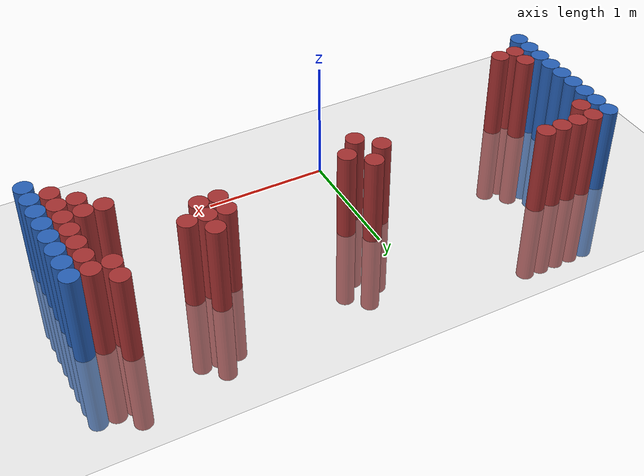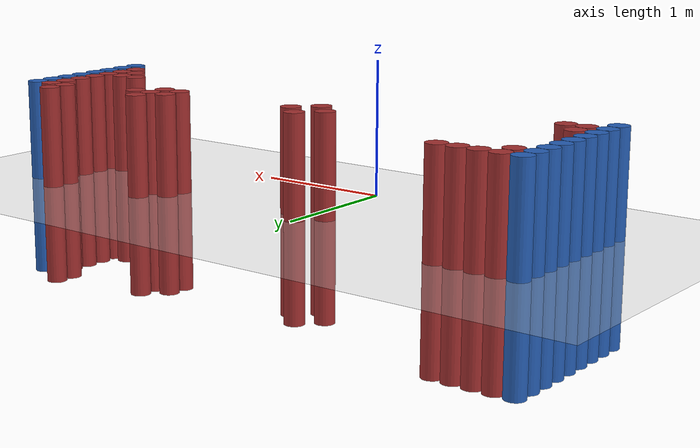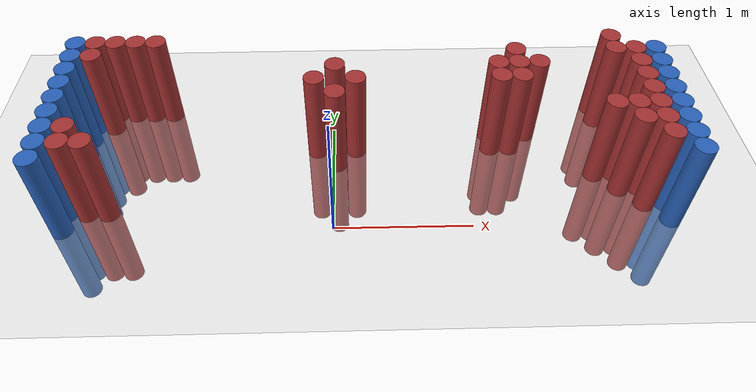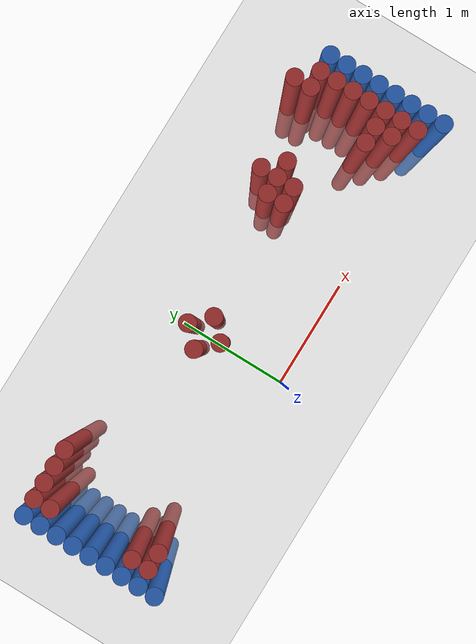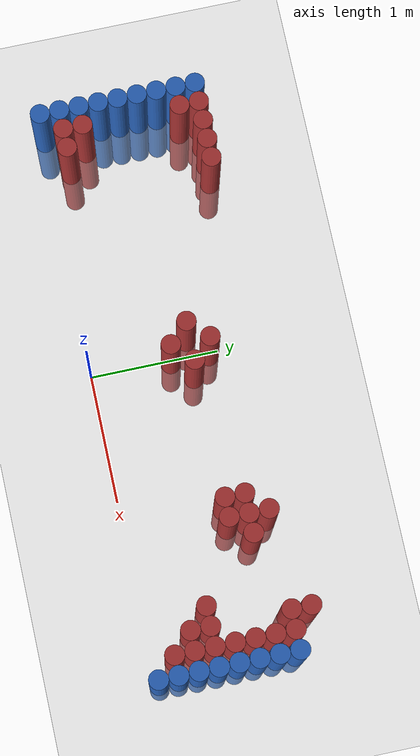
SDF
<sdf version="1.6">
 <world name="default">
  <model name="ground_plane">
   <static>1</static>
   <link name="link">
    <collision name="collision">
     <geometry><plane><normal>0 0 1</normal><size>100 100</size></plane></geometry>
     <surface><friction><ode><mu>100</mu><mu2>50</mu2></ode></friction></surface>
    </collision>
    <visual name="visual">
     <cast_shadows>0</cast_shadows>
     <geometry><plane><normal>0 0 1</normal><size>100 100</size></plane></geometry>
     <material>
      <script><uri>file://media/materials/scripts/gazebo.material</uri><name>Gazebo/Grey</name></script>
     </material>
    </visual>
   </link>
  </model>
  <model name="unit_cylinder_94">
   <static>1</static>
   <pose>2.425000 0.025000 0.000000 0.000000 0.000000 0.000000</pose>
   <link name="link">
    <inertial>
     <mass>1</mass>
     <inertia><ixx>0.145833</ixx><ixy>0</ixy><ixz>0</ixz><iyy>0.145833</iyy><iyz>0</iyz><izz>0.125</izz></inertia>
    </inertial>
    <collision name="collision">
     <geometry><cylinder><radius>0.075000</radius><length>1.5</length></cylinder></geometry>
    </collision>
    <visual name="visual">
     <geometry><cylinder><radius>0.075000</radius><length>1.5</length></cylinder></geometry>
     <material>
      <ambient>0.152000 0.379000 0.720000 1</ambient>
      <diffuse>0.152000 0.379000 0.720000 1</diffuse>
     </material>
     <material>
      <script><name>Gazebo/Grey</name><uri>file://media/materials/scripts/gazebo.material</uri></script>
     </material>
    </visual>
   </link>
  </model>
  <model name="unit_cylinder_95">
   <static>1</static>
   <pose>-1.925000 0.025000 0.000000 0.000000 0.000000 0.000000</pose>
   <link name="link">
    <inertial>
     <mass>1</mass>
     <inertia><ixx>0.145833</ixx><ixy>0</ixy><ixz>0</ixz><iyy>0.145833</iyy><iyz>0</iyz><izz>0.125</izz></inertia>
    </inertial>
    <collision name="collision">
     <geometry><cylinder><radius>0.075000</radius><length>1.5</length></cylinder></geometry>
    </collision>
    <visual name="visual">
     <geometry><cylinder><radius>0.075000</radius><length>1.5</length></cylinder></geometry>
     <material>
      <ambient>0.152000 0.379000 0.720000 1</ambient>
      <diffuse>0.152000 0.379000 0.720000 1</diffuse>
     </material>
     <material>
      <script><name>Gazebo/Grey</name><uri>file://media/materials/scripts/gazebo.material</uri></script>
     </material>
    </visual>
   </link>
  </model>
  <model name="unit_cylinder_96">
   <static>1</static>
   <pose>-1.925000 0.175000 0.000000 0.000000 0.000000 0.000000</pose>
   <link name="link">
    <inertial>
     <mass>1</mass>
     <inertia><ixx>0.145833</ixx><ixy>0</ixy><ixz>0</ixz><iyy>0.145833</iyy><iyz>0</iyz><izz>0.125</izz></inertia>
    </inertial>
    <collision name="collision">
     <geometry><cylinder><radius>0.075000</radius><length>1.5</length></cylinder></geometry>
    </collision>
    <visual name="visual">
     <geometry><cylinder><radius>0.075000</radius><length>1.5</length></cylinder></geometry>
     <material>
      <ambient>0.152000 0.379000 0.720000 1</ambient>
      <diffuse>0.152000 0.379000 0.720000 1</diffuse>
     </material>
     <material>
      <script><name>Gazebo/Grey</name><uri>file://media/materials/scripts/gazebo.material</uri></script>
     </material>
    </visual>
   </link>
  </model>
  <model name="unit_cylinder_97">
   <static>1</static>
   <pose>-1.925000 0.325000 0.000000 0.000000 0.000000 0.000000</pose>
   <link name="link">
    <inertial>
     <mass>1</mass>
     <inertia><ixx>0.145833</ixx><ixy>0</ixy><ixz>0</ixz><iyy>0.145833</iyy><iyz>0</iyz><izz>0.125</izz></inertia>
    </inertial>
    <collision name="collision">
     <geometry><cylinder><radius>0.075000</radius><length>1.5</length></cylinder></geometry>
    </collision>
    <visual name="visual">
     <geometry><cylinder><radius>0.075000</radius><length>1.5</length></cylinder></geometry>
     <material>
      <ambient>0.152000 0.379000 0.720000 1</ambient>
      <diffuse>0.152000 0.379000 0.720000 1</diffuse>
     </material>
     <material>
      <script><name>Gazebo/Grey</name><uri>file://media/materials/scripts/gazebo.material</uri></script>
     </material>
    </visual>
   </link>
  </model>
  <model name="unit_cylinder_98">
   <static>1</static>
   <pose>-1.925000 0.475000 0.000000 0.000000 0.000000 0.000000</pose>
   <link name="link">
    <inertial>
     <mass>1</mass>
     <inertia><ixx>0.145833</ixx><ixy>0</ixy><ixz>0</ixz><iyy>0.145833</iyy><iyz>0</iyz><izz>0.125</izz></inertia>
    </inertial>
    <collision name="collision">
     <geometry><cylinder><radius>0.075000</radius><length>1.5</length></cylinder></geometry>
    </collision>
    <visual name="visual">
     <geometry><cylinder><radius>0.075000</radius><length>1.5</length></cylinder></geometry>
     <material>
      <ambient>0.152000 0.379000 0.720000 1</ambient>
      <diffuse>0.152000 0.379000 0.720000 1</diffuse>
     </material>
     <material>
      <script><name>Gazebo/Grey</name><uri>file://media/materials/scripts/gazebo.material</uri></script>
     </material>
    </visual>
   </link>
  </model>
  <model name="unit_cylinder_99">
   <static>1</static>
   <pose>-1.925000 0.625000 0.000000 0.000000 0.000000 0.000000</pose>
   <link name="link">
    <inertial>
     <mass>1</mass>
     <inertia><ixx>0.145833</ixx><ixy>0</ixy><ixz>0</ixz><iyy>0.145833</iyy><iyz>0</iyz><izz>0.125</izz></inertia>
    </inertial>
    <collision name="collision">
     <geometry><cylinder><radius>0.075000</radius><length>1.5</length></cylinder></geometry>
    </collision>
    <visual name="visual">
     <geometry><cylinder><radius>0.075000</radius><length>1.5</length></cylinder></geometry>
     <material>
      <ambient>0.152000 0.379000 0.720000 1</ambient>
      <diffuse>0.152000 0.379000 0.720000 1</diffuse>
     </material>
     <material>
      <script><name>Gazebo/Grey</name><uri>file://media/materials/scripts/gazebo.material</uri></script>
     </material>
    </visual>
   </link>
  </model>
  <model name="unit_cylinder_100">
   <static>1</static>
   <pose>-1.925000 0.775000 0.000000 0.000000 0.000000 0.000000</pose>
   <link name="link">
    <inertial>
     <mass>1</mass>
     <inertia><ixx>0.145833</ixx><ixy>0</ixy><ixz>0</ixz><iyy>0.145833</iyy><iyz>0</iyz><izz>0.125</izz></inertia>
    </inertial>
    <collision name="collision">
     <geometry><cylinder><radius>0.075000</radius><length>1.5</length></cylinder></geometry>
    </collision>
    <visual name="visual">
     <geometry><cylinder><radius>0.075000</radius><length>1.5</length></cylinder></geometry>
     <material>
      <ambient>0.152000 0.379000 0.720000 1</ambient>
      <diffuse>0.152000 0.379000 0.720000 1</diffuse>
     </material>
     <material>
      <script><name>Gazebo/Grey</name><uri>file://media/materials/scripts/gazebo.material</uri></script>
     </material>
    </visual>
   </link>
  </model>
  <model name="unit_cylinder_101">
   <static>1</static>
   <pose>-1.925000 0.925000 0.000000 0.000000 0.000000 0.000000</pose>
   <link name="link">
    <inertial>
     <mass>1</mass>
     <inertia><ixx>0.145833</ixx><ixy>0</ixy><ixz>0</ixz><iyy>0.145833</iyy><iyz>0</iyz><izz>0.125</izz></inertia>
    </inertial>
    <collision name="collision">
     <geometry><cylinder><radius>0.075000</radius><length>1.5</length></cylinder></geometry>
    </collision>
    <visual name="visual">
     <geometry><cylinder><radius>0.075000</radius><length>1.5</length></cylinder></geometry>
     <material>
      <ambient>0.152000 0.379000 0.720000 1</ambient>
      <diffuse>0.152000 0.379000 0.720000 1</diffuse>
     </material>
     <material>
      <script><name>Gazebo/Grey</name><uri>file://media/materials/scripts/gazebo.material</uri></script>
     </material>
    </visual>
   </link>
  </model>
  <model name="unit_cylinder_102">
   <static>1</static>
   <pose>-1.925000 1.075000 0.000000 0.000000 0.000000 0.000000</pose>
   <link name="link">
    <inertial>
     <mass>1</mass>
     <inertia><ixx>0.145833</ixx><ixy>0</ixy><ixz>0</ixz><iyy>0.145833</iyy><iyz>0</iyz><izz>0.125</izz></inertia>
    </inertial>
    <collision name="collision">
     <geometry><cylinder><radius>0.075000</radius><length>1.5</length></cylinder></geometry>
    </collision>
    <visual name="visual">
     <geometry><cylinder><radius>0.075000</radius><length>1.5</length></cylinder></geometry>
     <material>
      <ambient>0.152000 0.379000 0.720000 1</ambient>
      <diffuse>0.152000 0.379000 0.720000 1</diffuse>
     </material>
     <material>
      <script><name>Gazebo/Grey</name><uri>file://media/materials/scripts/gazebo.material</uri></script>
     </material>
    </visual>
   </link>
  </model>
  <model name="unit_cylinder_103">
   <static>1</static>
   <pose>-1.925000 1.225000 0.000000 0.000000 0.000000 0.000000</pose>
   <link name="link">
    <inertial>
     <mass>1</mass>
     <inertia><ixx>0.145833</ixx><ixy>0</ixy><ixz>0</ixz><iyy>0.145833</iyy><iyz>0</iyz><izz>0.125</izz></inertia>
    </inertial>
    <collision name="collision">
     <geometry><cylinder><radius>0.075000</radius><length>1.5</length></cylinder></geometry>
    </collision>
    <visual name="visual">
     <geometry><cylinder><radius>0.075000</radius><length>1.5</length></cylinder></geometry>
     <material>
      <ambient>0.152000 0.379000 0.720000 1</ambient>
      <diffuse>0.152000 0.379000 0.720000 1</diffuse>
     </material>
     <material>
      <script><name>Gazebo/Grey</name><uri>file://media/materials/scripts/gazebo.material</uri></script>
     </material>
    </visual>
   </link>
  </model>
  <model name="unit_cylinder_126">
   <static>1</static>
   <pose>-1.775000 0.175000 0.000000 0.000000 0.000000 0.000000</pose>
   <link name="link">
    <inertial>
     <mass>1</mass>
     <inertia><ixx>0.145833</ixx><ixy>0</ixy><ixz>0</ixz><iyy>0.145833</iyy><iyz>0</iyz><izz>0.125</izz></inertia>
    </inertial>
    <collision name="collision">
     <geometry><cylinder><radius>0.075000</radius><length>1.5</length></cylinder></geometry>
    </collision>
    <visual name="visual">
     <geometry><cylinder><radius>0.075000</radius><length>1.5</length></cylinder></geometry>
     <material>
      <ambient>0.648000 0.192000 0.192000 1</ambient>
      <diffuse>0.648000 0.192000 0.192000 1</diffuse>
     </material>
     <material>
      <script><name>Gazebo/Grey</name><uri>file://media/materials/scripts/gazebo.material</uri></script>
     </material>
    </visual>
   </link>
  </model>
  <model name="unit_cylinder_127">
   <static>1</static>
   <pose>-1.775000 0.325000 0.000000 0.000000 0.000000 0.000000</pose>
   <link name="link">
    <inertial>
     <mass>1</mass>
     <inertia><ixx>0.145833</ixx><ixy>0</ixy><ixz>0</ixz><iyy>0.145833</iyy><iyz>0</iyz><izz>0.125</izz></inertia>
    </inertial>
    <collision name="collision">
     <geometry><cylinder><radius>0.075000</radius><length>1.5</length></cylinder></geometry>
    </collision>
    <visual name="visual">
     <geometry><cylinder><radius>0.075000</radius><length>1.5</length></cylinder></geometry>
     <material>
      <ambient>0.648000 0.192000 0.192000 1</ambient>
      <diffuse>0.648000 0.192000 0.192000 1</diffuse>
     </material>
     <material>
      <script><name>Gazebo/Grey</name><uri>file://media/materials/scripts/gazebo.material</uri></script>
     </material>
    </visual>
   </link>
  </model>
  <model name="unit_cylinder_128">
   <static>1</static>
   <pose>-1.775000 1.075000 0.000000 0.000000 0.000000 0.000000</pose>
   <link name="link">
    <inertial>
     <mass>1</mass>
     <inertia><ixx>0.145833</ixx><ixy>0</ixy><ixz>0</ixz><iyy>0.145833</iyy><iyz>0</iyz><izz>0.125</izz></inertia>
    </inertial>
    <collision name="collision">
     <geometry><cylinder><radius>0.075000</radius><length>1.5</length></cylinder></geometry>
    </collision>
    <visual name="visual">
     <geometry><cylinder><radius>0.075000</radius><length>1.5</length></cylinder></geometry>
     <material>
      <ambient>0.648000 0.192000 0.192000 1</ambient>
      <diffuse>0.648000 0.192000 0.192000 1</diffuse>
     </material>
     <material>
      <script><name>Gazebo/Grey</name><uri>file://media/materials/scripts/gazebo.material</uri></script>
     </material>
    </visual>
   </link>
  </model>
  <model name="unit_cylinder_129">
   <static>1</static>
   <pose>-1.775000 1.225000 0.000000 0.000000 0.000000 0.000000</pose>
   <link name="link">
    <inertial>
     <mass>1</mass>
     <inertia><ixx>0.145833</ixx><ixy>0</ixy><ixz>0</ixz><iyy>0.145833</iyy><iyz>0</iyz><izz>0.125</izz></inertia>
    </inertial>
    <collision name="collision">
     <geometry><cylinder><radius>0.075000</radius><length>1.5</length></cylinder></geometry>
    </collision>
    <visual name="visual">
     <geometry><cylinder><radius>0.075000</radius><length>1.5</length></cylinder></geometry>
     <material>
      <ambient>0.648000 0.192000 0.192000 1</ambient>
      <diffuse>0.648000 0.192000 0.192000 1</diffuse>
     </material>
     <material>
      <script><name>Gazebo/Grey</name><uri>file://media/materials/scripts/gazebo.material</uri></script>
     </material>
    </visual>
   </link>
  </model>
  <model name="unit_cylinder_146">
   <static>1</static>
   <pose>-1.625000 0.175000 0.000000 0.000000 0.000000 0.000000</pose>
   <link name="link">
    <inertial>
     <mass>1</mass>
     <inertia><ixx>0.145833</ixx><ixy>0</ixy><ixz>0</ixz><iyy>0.145833</iyy><iyz>0</iyz><izz>0.125</izz></inertia>
    </inertial>
    <collision name="collision">
     <geometry><cylinder><radius>0.075000</radius><length>1.5</length></cylinder></geometry>
    </collision>
    <visual name="visual">
     <geometry><cylinder><radius>0.075000</radius><length>1.5</length></cylinder></geometry>
     <material>
      <ambient>0.648000 0.192000 0.192000 1</ambient>
      <diffuse>0.648000 0.192000 0.192000 1</diffuse>
     </material>
     <material>
      <script><name>Gazebo/Grey</name><uri>file://media/materials/scripts/gazebo.material</uri></script>
     </material>
    </visual>
   </link>
  </model>
  <model name="unit_cylinder_147">
   <static>1</static>
   <pose>-1.625000 1.225000 0.000000 0.000000 0.000000 0.000000</pose>
   <link name="link">
    <inertial>
     <mass>1</mass>
     <inertia><ixx>0.145833</ixx><ixy>0</ixy><ixz>0</ixz><iyy>0.145833</iyy><iyz>0</iyz><izz>0.125</izz></inertia>
    </inertial>
    <collision name="collision">
     <geometry><cylinder><radius>0.075000</radius><length>1.5</length></cylinder></geometry>
    </collision>
    <visual name="visual">
     <geometry><cylinder><radius>0.075000</radius><length>1.5</length></cylinder></geometry>
     <material>
      <ambient>0.648000 0.192000 0.192000 1</ambient>
      <diffuse>0.648000 0.192000 0.192000 1</diffuse>
     </material>
     <material>
      <script><name>Gazebo/Grey</name><uri>file://media/materials/scripts/gazebo.material</uri></script>
     </material>
    </visual>
   </link>
  </model>
  <model name="unit_cylinder_151">
   <static>1</static>
   <pose>-1.475000 1.225000 0.000000 0.000000 0.000000 0.000000</pose>
   <link name="link">
    <inertial>
     <mass>1</mass>
     <inertia><ixx>0.145833</ixx><ixy>0</ixy><ixz>0</ixz><iyy>0.145833</iyy><iyz>0</iyz><izz>0.125</izz></inertia>
    </inertial>
    <collision name="collision">
     <geometry><cylinder><radius>0.075000</radius><length>1.5</length></cylinder></geometry>
    </collision>
    <visual name="visual">
     <geometry><cylinder><radius>0.075000</radius><length>1.5</length></cylinder></geometry>
     <material>
      <ambient>0.648000 0.192000 0.192000 1</ambient>
      <diffuse>0.648000 0.192000 0.192000 1</diffuse>
     </material>
     <material>
      <script><name>Gazebo/Grey</name><uri>file://media/materials/scripts/gazebo.material</uri></script>
     </material>
    </visual>
   </link>
  </model>
  <model name="unit_cylinder_154">
   <static>1</static>
   <pose>-1.325000 1.225000 0.000000 0.000000 0.000000 0.000000</pose>
   <link name="link">
    <inertial>
     <mass>1</mass>
     <inertia><ixx>0.145833</ixx><ixy>0</ixy><ixz>0</ixz><iyy>0.145833</iyy><iyz>0</iyz><izz>0.125</izz></inertia>
    </inertial>
    <collision name="collision">
     <geometry><cylinder><radius>0.075000</radius><length>1.5</length></cylinder></geometry>
    </collision>
    <visual name="visual">
     <geometry><cylinder><radius>0.075000</radius><length>1.5</length></cylinder></geometry>
     <material>
      <ambient>0.648000 0.192000 0.192000 1</ambient>
      <diffuse>0.648000 0.192000 0.192000 1</diffuse>
     </material>
     <material>
      <script><name>Gazebo/Grey</name><uri>file://media/materials/scripts/gazebo.material</uri></script>
     </material>
    </visual>
   </link>
  </model>
  <model name="unit_cylinder_166">
   <static>1</static>
   <pose>-0.125000 0.775000 0.000000 0.000000 0.000000 0.000000</pose>
   <link name="link">
    <inertial>
     <mass>1</mass>
     <inertia><ixx>0.145833</ixx><ixy>0</ixy><ixz>0</ixz><iyy>0.145833</iyy><iyz>0</iyz><izz>0.125</izz></inertia>
    </inertial>
    <collision name="collision">
     <geometry><cylinder><radius>0.075000</radius><length>1.5</length></cylinder></geometry>
    </collision>
    <visual name="visual">
     <geometry><cylinder><radius>0.075000</radius><length>1.5</length></cylinder></geometry>
     <material>
      <ambient>0.648000 0.192000 0.192000 1</ambient>
      <diffuse>0.648000 0.192000 0.192000 1</diffuse>
     </material>
     <material>
      <script><name>Gazebo/Grey</name><uri>file://media/materials/scripts/gazebo.material</uri></script>
     </material>
    </visual>
   </link>
  </model>
  <model name="unit_cylinder_167">
   <static>1</static>
   <pose>0.025000 0.625000 0.000000 0.000000 0.000000 0.000000</pose>
   <link name="link">
    <inertial>
     <mass>1</mass>
     <inertia><ixx>0.145833</ixx><ixy>0</ixy><ixz>0</ixz><iyy>0.145833</iyy><iyz>0</iyz><izz>0.125</izz></inertia>
    </inertial>
    <collision name="collision">
     <geometry><cylinder><radius>0.075000</radius><length>1.5</length></cylinder></geometry>
    </collision>
    <visual name="visual">
     <geometry><cylinder><radius>0.075000</radius><length>1.5</length></cylinder></geometry>
     <material>
      <ambient>0.648000 0.192000 0.192000 1</ambient>
      <diffuse>0.648000 0.192000 0.192000 1</diffuse>
     </material>
     <material>
      <script><name>Gazebo/Grey</name><uri>file://media/materials/scripts/gazebo.material</uri></script>
     </material>
    </visual>
   </link>
  </model>
  <model name="unit_cylinder_168">
   <static>1</static>
   <pose>0.025000 0.925000 0.000000 0.000000 0.000000 0.000000</pose>
   <link name="link">
    <inertial>
     <mass>1</mass>
     <inertia><ixx>0.145833</ixx><ixy>0</ixy><ixz>0</ixz><iyy>0.145833</iyy><iyz>0</iyz><izz>0.125</izz></inertia>
    </inertial>
    <collision name="collision">
     <geometry><cylinder><radius>0.075000</radius><length>1.5</length></cylinder></geometry>
    </collision>
    <visual name="visual">
     <geometry><cylinder><radius>0.075000</radius><length>1.5</length></cylinder></geometry>
     <material>
      <ambient>0.648000 0.192000 0.192000 1</ambient>
      <diffuse>0.648000 0.192000 0.192000 1</diffuse>
     </material>
     <material>
      <script><name>Gazebo/Grey</name><uri>file://media/materials/scripts/gazebo.material</uri></script>
     </material>
    </visual>
   </link>
  </model>
  <model name="unit_cylinder_173">
   <static>1</static>
   <pose>0.175000 0.775000 0.000000 0.000000 0.000000 0.000000</pose>
   <link name="link">
    <inertial>
     <mass>1</mass>
     <inertia><ixx>0.145833</ixx><ixy>0</ixy><ixz>0</ixz><iyy>0.145833</iyy><iyz>0</iyz><izz>0.125</izz></inertia>
    </inertial>
    <collision name="collision">
     <geometry><cylinder><radius>0.075000</radius><length>1.5</length></cylinder></geometry>
    </collision>
    <visual name="visual">
     <geometry><cylinder><radius>0.075000</radius><length>1.5</length></cylinder></geometry>
     <material>
      <ambient>0.648000 0.192000 0.192000 1</ambient>
      <diffuse>0.648000 0.192000 0.192000 1</diffuse>
     </material>
     <material>
      <script><name>Gazebo/Grey</name><uri>file://media/materials/scripts/gazebo.material</uri></script>
     </material>
    </visual>
   </link>
  </model>
  <model name="unit_cylinder_193">
   <static>1</static>
   <pose>1.225000 0.775000 0.000000 0.000000 0.000000 0.000000</pose>
   <link name="link">
    <inertial>
     <mass>1</mass>
     <inertia><ixx>0.145833</ixx><ixy>0</ixy><ixz>0</ixz><iyy>0.145833</iyy><iyz>0</iyz><izz>0.125</izz></inertia>
    </inertial>
    <collision name="collision">
     <geometry><cylinder><radius>0.075000</radius><length>1.5</length></cylinder></geometry>
    </collision>
    <visual name="visual">
     <geometry><cylinder><radius>0.075000</radius><length>1.5</length></cylinder></geometry>
     <material>
      <ambient>0.648000 0.192000 0.192000 1</ambient>
      <diffuse>0.648000 0.192000 0.192000 1</diffuse>
     </material>
     <material>
      <script><name>Gazebo/Grey</name><uri>file://media/materials/scripts/gazebo.material</uri></script>
     </material>
    </visual>
   </link>
  </model>
  <model name="unit_cylinder_194">
   <static>1</static>
   <pose>1.225000 0.925000 0.000000 0.000000 0.000000 0.000000</pose>
   <link name="link">
    <inertial>
     <mass>1</mass>
     <inertia><ixx>0.145833</ixx><ixy>0</ixy><ixz>0</ixz><iyy>0.145833</iyy><iyz>0</iyz><izz>0.125</izz></inertia>
    </inertial>
    <collision name="collision">
     <geometry><cylinder><radius>0.075000</radius><length>1.5</length></cylinder></geometry>
    </collision>
    <visual name="visual">
     <geometry><cylinder><radius>0.075000</radius><length>1.5</length></cylinder></geometry>
     <material>
      <ambient>0.648000 0.192000 0.192000 1</ambient>
      <diffuse>0.648000 0.192000 0.192000 1</diffuse>
     </material>
     <material>
      <script><name>Gazebo/Grey</name><uri>file://media/materials/scripts/gazebo.material</uri></script>
     </material>
    </visual>
   </link>
  </model>
  <model name="unit_cylinder_201">
   <static>1</static>
   <pose>1.375000 0.775000 0.000000 0.000000 0.000000 0.000000</pose>
   <link name="link">
    <inertial>
     <mass>1</mass>
     <inertia><ixx>0.145833</ixx><ixy>0</ixy><ixz>0</ixz><iyy>0.145833</iyy><iyz>0</iyz><izz>0.125</izz></inertia>
    </inertial>
    <collision name="collision">
     <geometry><cylinder><radius>0.075000</radius><length>1.5</length></cylinder></geometry>
    </collision>
    <visual name="visual">
     <geometry><cylinder><radius>0.075000</radius><length>1.5</length></cylinder></geometry>
     <material>
      <ambient>0.648000 0.192000 0.192000 1</ambient>
      <diffuse>0.648000 0.192000 0.192000 1</diffuse>
     </material>
     <material>
      <script><name>Gazebo/Grey</name><uri>file://media/materials/scripts/gazebo.material</uri></script>
     </material>
    </visual>
   </link>
  </model>
  <model name="unit_cylinder_202">
   <static>1</static>
   <pose>1.375000 0.925000 0.000000 0.000000 0.000000 0.000000</pose>
   <link name="link">
    <inertial>
     <mass>1</mass>
     <inertia><ixx>0.145833</ixx><ixy>0</ixy><ixz>0</ixz><iyy>0.145833</iyy><iyz>0</iyz><izz>0.125</izz></inertia>
    </inertial>
    <collision name="collision">
     <geometry><cylinder><radius>0.075000</radius><length>1.5</length></cylinder></geometry>
    </collision>
    <visual name="visual">
     <geometry><cylinder><radius>0.075000</radius><length>1.5</length></cylinder></geometry>
     <material>
      <ambient>0.648000 0.192000 0.192000 1</ambient>
      <diffuse>0.648000 0.192000 0.192000 1</diffuse>
     </material>
     <material>
      <script><name>Gazebo/Grey</name><uri>file://media/materials/scripts/gazebo.material</uri></script>
     </material>
    </visual>
   </link>
  </model>
  <model name="unit_cylinder_203">
   <static>1</static>
   <pose>1.375000 1.075000 0.000000 0.000000 0.000000 0.000000</pose>
   <link name="link">
    <inertial>
     <mass>1</mass>
     <inertia><ixx>0.145833</ixx><ixy>0</ixy><ixz>0</ixz><iyy>0.145833</iyy><iyz>0</iyz><izz>0.125</izz></inertia>
    </inertial>
    <collision name="collision">
     <geometry><cylinder><radius>0.075000</radius><length>1.5</length></cylinder></geometry>
    </collision>
    <visual name="visual">
     <geometry><cylinder><radius>0.075000</radius><length>1.5</length></cylinder></geometry>
     <material>
      <ambient>0.648000 0.192000 0.192000 1</ambient>
      <diffuse>0.648000 0.192000 0.192000 1</diffuse>
     </material>
     <material>
      <script><name>Gazebo/Grey</name><uri>file://media/materials/scripts/gazebo.material</uri></script>
     </material>
    </visual>
   </link>
  </model>
  <model name="unit_cylinder_208">
   <static>1</static>
   <pose>1.525000 0.925000 0.000000 0.000000 0.000000 0.000000</pose>
   <link name="link">
    <inertial>
     <mass>1</mass>
     <inertia><ixx>0.145833</ixx><ixy>0</ixy><ixz>0</ixz><iyy>0.145833</iyy><iyz>0</iyz><izz>0.125</izz></inertia>
    </inertial>
    <collision name="collision">
     <geometry><cylinder><radius>0.075000</radius><length>1.5</length></cylinder></geometry>
    </collision>
    <visual name="visual">
     <geometry><cylinder><radius>0.075000</radius><length>1.5</length></cylinder></geometry>
     <material>
      <ambient>0.648000 0.192000 0.192000 1</ambient>
      <diffuse>0.648000 0.192000 0.192000 1</diffuse>
     </material>
     <material>
      <script><name>Gazebo/Grey</name><uri>file://media/materials/scripts/gazebo.material</uri></script>
     </material>
    </visual>
   </link>
  </model>
  <model name="unit_cylinder_215">
   <static>1</static>
   <pose>1.975000 0.475000 0.000000 0.000000 0.000000 0.000000</pose>
   <link name="link">
    <inertial>
     <mass>1</mass>
     <inertia><ixx>0.145833</ixx><ixy>0</ixy><ixz>0</ixz><iyy>0.145833</iyy><iyz>0</iyz><izz>0.125</izz></inertia>
    </inertial>
    <collision name="collision">
     <geometry><cylinder><radius>0.075000</radius><length>1.5</length></cylinder></geometry>
    </collision>
    <visual name="visual">
     <geometry><cylinder><radius>0.075000</radius><length>1.5</length></cylinder></geometry>
     <material>
      <ambient>0.648000 0.192000 0.192000 1</ambient>
      <diffuse>0.648000 0.192000 0.192000 1</diffuse>
     </material>
     <material>
      <script><name>Gazebo/Grey</name><uri>file://media/materials/scripts/gazebo.material</uri></script>
     </material>
    </visual>
   </link>
  </model>
  <model name="unit_cylinder_221">
   <static>1</static>
   <pose>2.125000 0.325000 0.000000 0.000000 0.000000 0.000000</pose>
   <link name="link">
    <inertial>
     <mass>1</mass>
     <inertia><ixx>0.145833</ixx><ixy>0</ixy><ixz>0</ixz><iyy>0.145833</iyy><iyz>0</iyz><izz>0.125</izz></inertia>
    </inertial>
    <collision name="collision">
     <geometry><cylinder><radius>0.075000</radius><length>1.5</length></cylinder></geometry>
    </collision>
    <visual name="visual">
     <geometry><cylinder><radius>0.075000</radius><length>1.5</length></cylinder></geometry>
     <material>
      <ambient>0.648000 0.192000 0.192000 1</ambient>
      <diffuse>0.648000 0.192000 0.192000 1</diffuse>
     </material>
     <material>
      <script><name>Gazebo/Grey</name><uri>file://media/materials/scripts/gazebo.material</uri></script>
     </material>
    </visual>
   </link>
  </model>
  <model name="unit_cylinder_222">
   <static>1</static>
   <pose>2.125000 0.475000 0.000000 0.000000 0.000000 0.000000</pose>
   <link name="link">
    <inertial>
     <mass>1</mass>
     <inertia><ixx>0.145833</ixx><ixy>0</ixy><ixz>0</ixz><iyy>0.145833</iyy><iyz>0</iyz><izz>0.125</izz></inertia>
    </inertial>
    <collision name="collision">
     <geometry><cylinder><radius>0.075000</radius><length>1.5</length></cylinder></geometry>
    </collision>
    <visual name="visual">
     <geometry><cylinder><radius>0.075000</radius><length>1.5</length></cylinder></geometry>
     <material>
      <ambient>0.648000 0.192000 0.192000 1</ambient>
      <diffuse>0.648000 0.192000 0.192000 1</diffuse>
     </material>
     <material>
      <script><name>Gazebo/Grey</name><uri>file://media/materials/scripts/gazebo.material</uri></script>
     </material>
    </visual>
   </link>
  </model>
  <model name="unit_cylinder_223">
   <static>1</static>
   <pose>2.125000 1.075000 0.000000 0.000000 0.000000 0.000000</pose>
   <link name="link">
    <inertial>
     <mass>1</mass>
     <inertia><ixx>0.145833</ixx><ixy>0</ixy><ixz>0</ixz><iyy>0.145833</iyy><iyz>0</iyz><izz>0.125</izz></inertia>
    </inertial>
    <collision name="collision">
     <geometry><cylinder><radius>0.075000</radius><length>1.5</length></cylinder></geometry>
    </collision>
    <visual name="visual">
     <geometry><cylinder><radius>0.075000</radius><length>1.5</length></cylinder></geometry>
     <material>
      <ambient>0.648000 0.192000 0.192000 1</ambient>
      <diffuse>0.648000 0.192000 0.192000 1</diffuse>
     </material>
     <material>
      <script><name>Gazebo/Grey</name><uri>file://media/materials/scripts/gazebo.material</uri></script>
     </material>
    </visual>
   </link>
  </model>
  <model name="unit_cylinder_224">
   <static>1</static>
   <pose>2.125000 1.225000 0.000000 0.000000 0.000000 0.000000</pose>
   <link name="link">
    <inertial>
     <mass>1</mass>
     <inertia><ixx>0.145833</ixx><ixy>0</ixy><ixz>0</ixz><iyy>0.145833</iyy><iyz>0</iyz><izz>0.125</izz></inertia>
    </inertial>
    <collision name="collision">
     <geometry><cylinder><radius>0.075000</radius><length>1.5</length></cylinder></geometry>
    </collision>
    <visual name="visual">
     <geometry><cylinder><radius>0.075000</radius><length>1.5</length></cylinder></geometry>
     <material>
      <ambient>0.648000 0.192000 0.192000 1</ambient>
      <diffuse>0.648000 0.192000 0.192000 1</diffuse>
     </material>
     <material>
      <script><name>Gazebo/Grey</name><uri>file://media/materials/scripts/gazebo.material</uri></script>
     </material>
    </visual>
   </link>
  </model>
  <model name="unit_cylinder_228">
   <static>1</static>
   <pose>2.275000 0.175000 0.000000 0.000000 0.000000 0.000000</pose>
   <link name="link">
    <inertial>
     <mass>1</mass>
     <inertia><ixx>0.145833</ixx><ixy>0</ixy><ixz>0</ixz><iyy>0.145833</iyy><iyz>0</iyz><izz>0.125</izz></inertia>
    </inertial>
    <collision name="collision">
     <geometry><cylinder><radius>0.075000</radius><length>1.5</length></cylinder></geometry>
    </collision>
    <visual name="visual">
     <geometry><cylinder><radius>0.075000</radius><length>1.5</length></cylinder></geometry>
     <material>
      <ambient>0.648000 0.192000 0.192000 1</ambient>
      <diffuse>0.648000 0.192000 0.192000 1</diffuse>
     </material>
     <material>
      <script><name>Gazebo/Grey</name><uri>file://media/materials/scripts/gazebo.material</uri></script>
     </material>
    </visual>
   </link>
  </model>
  <model name="unit_cylinder_229">
   <static>1</static>
   <pose>2.275000 0.325000 0.000000 0.000000 0.000000 0.000000</pose>
   <link name="link">
    <inertial>
     <mass>1</mass>
     <inertia><ixx>0.145833</ixx><ixy>0</ixy><ixz>0</ixz><iyy>0.145833</iyy><iyz>0</iyz><izz>0.125</izz></inertia>
    </inertial>
    <collision name="collision">
     <geometry><cylinder><radius>0.075000</radius><length>1.5</length></cylinder></geometry>
    </collision>
    <visual name="visual">
     <geometry><cylinder><radius>0.075000</radius><length>1.5</length></cylinder></geometry>
     <material>
      <ambient>0.648000 0.192000 0.192000 1</ambient>
      <diffuse>0.648000 0.192000 0.192000 1</diffuse>
     </material>
     <material>
      <script><name>Gazebo/Grey</name><uri>file://media/materials/scripts/gazebo.material</uri></script>
     </material>
    </visual>
   </link>
  </model>
  <model name="unit_cylinder_230">
   <static>1</static>
   <pose>2.275000 0.475000 0.000000 0.000000 0.000000 0.000000</pose>
   <link name="link">
    <inertial>
     <mass>1</mass>
     <inertia><ixx>0.145833</ixx><ixy>0</ixy><ixz>0</ixz><iyy>0.145833</iyy><iyz>0</iyz><izz>0.125</izz></inertia>
    </inertial>
    <collision name="collision">
     <geometry><cylinder><radius>0.075000</radius><length>1.5</length></cylinder></geometry>
    </collision>
    <visual name="visual">
     <geometry><cylinder><radius>0.075000</radius><length>1.5</length></cylinder></geometry>
     <material>
      <ambient>0.648000 0.192000 0.192000 1</ambient>
      <diffuse>0.648000 0.192000 0.192000 1</diffuse>
     </material>
     <material>
      <script><name>Gazebo/Grey</name><uri>file://media/materials/scripts/gazebo.material</uri></script>
     </material>
    </visual>
   </link>
  </model>
  <model name="unit_cylinder_231">
   <static>1</static>
   <pose>2.275000 0.625000 0.000000 0.000000 0.000000 0.000000</pose>
   <link name="link">
    <inertial>
     <mass>1</mass>
     <inertia><ixx>0.145833</ixx><ixy>0</ixy><ixz>0</ixz><iyy>0.145833</iyy><iyz>0</iyz><izz>0.125</izz></inertia>
    </inertial>
    <collision name="collision">
     <geometry><cylinder><radius>0.075000</radius><length>1.5</length></cylinder></geometry>
    </collision>
    <visual name="visual">
     <geometry><cylinder><radius>0.075000</radius><length>1.5</length></cylinder></geometry>
     <material>
      <ambient>0.648000 0.192000 0.192000 1</ambient>
      <diffuse>0.648000 0.192000 0.192000 1</diffuse>
     </material>
     <material>
      <script><name>Gazebo/Grey</name><uri>file://media/materials/scripts/gazebo.material</uri></script>
     </material>
    </visual>
   </link>
  </model>
  <model name="unit_cylinder_232">
   <static>1</static>
   <pose>2.275000 0.775000 0.000000 0.000000 0.000000 0.000000</pose>
   <link name="link">
    <inertial>
     <mass>1</mass>
     <inertia><ixx>0.145833</ixx><ixy>0</ixy><ixz>0</ixz><iyy>0.145833</iyy><iyz>0</iyz><izz>0.125</izz></inertia>
    </inertial>
    <collision name="collision">
     <geometry><cylinder><radius>0.075000</radius><length>1.5</length></cylinder></geometry>
    </collision>
    <visual name="visual">
     <geometry><cylinder><radius>0.075000</radius><length>1.5</length></cylinder></geometry>
     <material>
      <ambient>0.648000 0.192000 0.192000 1</ambient>
      <diffuse>0.648000 0.192000 0.192000 1</diffuse>
     </material>
     <material>
      <script><name>Gazebo/Grey</name><uri>file://media/materials/scripts/gazebo.material</uri></script>
     </material>
    </visual>
   </link>
  </model>
  <model name="unit_cylinder_233">
   <static>1</static>
   <pose>2.275000 0.925000 0.000000 0.000000 0.000000 0.000000</pose>
   <link name="link">
    <inertial>
     <mass>1</mass>
     <inertia><ixx>0.145833</ixx><ixy>0</ixy><ixz>0</ixz><iyy>0.145833</iyy><iyz>0</iyz><izz>0.125</izz></inertia>
    </inertial>
    <collision name="collision">
     <geometry><cylinder><radius>0.075000</radius><length>1.5</length></cylinder></geometry>
    </collision>
    <visual name="visual">
     <geometry><cylinder><radius>0.075000</radius><length>1.5</length></cylinder></geometry>
     <material>
      <ambient>0.648000 0.192000 0.192000 1</ambient>
      <diffuse>0.648000 0.192000 0.192000 1</diffuse>
     </material>
     <material>
      <script><name>Gazebo/Grey</name><uri>file://media/materials/scripts/gazebo.material</uri></script>
     </material>
    </visual>
   </link>
  </model>
  <model name="unit_cylinder_234">
   <static>1</static>
   <pose>2.275000 1.075000 0.000000 0.000000 0.000000 0.000000</pose>
   <link name="link">
    <inertial>
     <mass>1</mass>
     <inertia><ixx>0.145833</ixx><ixy>0</ixy><ixz>0</ixz><iyy>0.145833</iyy><iyz>0</iyz><izz>0.125</izz></inertia>
    </inertial>
    <collision name="collision">
     <geometry><cylinder><radius>0.075000</radius><length>1.5</length></cylinder></geometry>
    </collision>
    <visual name="visual">
     <geometry><cylinder><radius>0.075000</radius><length>1.5</length></cylinder></geometry>
     <material>
      <ambient>0.648000 0.192000 0.192000 1</ambient>
      <diffuse>0.648000 0.192000 0.192000 1</diffuse>
     </material>
     <material>
      <script><name>Gazebo/Grey</name><uri>file://media/materials/scripts/gazebo.material</uri></script>
     </material>
    </visual>
   </link>
  </model>
  <model name="unit_cylinder_252">
   <static>1</static>
   <pose>2.425000 0.175000 0.000000 0.000000 0.000000 0.000000</pose>
   <link name="link">
    <inertial>
     <mass>1</mass>
     <inertia><ixx>0.145833</ixx><ixy>0</ixy><ixz>0</ixz><iyy>0.145833</iyy><iyz>0</iyz><izz>0.125</izz></inertia>
    </inertial>
    <collision name="collision">
     <geometry><cylinder><radius>0.075000</radius><length>1.5</length></cylinder></geometry>
    </collision>
    <visual name="visual">
     <geometry><cylinder><radius>0.075000</radius><length>1.5</length></cylinder></geometry>
     <material>
      <ambient>0.152000 0.379000 0.720000 1</ambient>
      <diffuse>0.152000 0.379000 0.720000 1</diffuse>
     </material>
     <material>
      <script><name>Gazebo/Grey</name><uri>file://media/materials/scripts/gazebo.material</uri></script>
     </material>
    </visual>
   </link>
  </model>
  <model name="unit_cylinder_253">
   <static>1</static>
   <pose>2.425000 0.325000 0.000000 0.000000 0.000000 0.000000</pose>
   <link name="link">
    <inertial>
     <mass>1</mass>
     <inertia><ixx>0.145833</ixx><ixy>0</ixy><ixz>0</ixz><iyy>0.145833</iyy><iyz>0</iyz><izz>0.125</izz></inertia>
    </inertial>
    <collision name="collision">
     <geometry><cylinder><radius>0.075000</radius><length>1.5</length></cylinder></geometry>
    </collision>
    <visual name="visual">
     <geometry><cylinder><radius>0.075000</radius><length>1.5</length></cylinder></geometry>
     <material>
      <ambient>0.152000 0.379000 0.720000 1</ambient>
      <diffuse>0.152000 0.379000 0.720000 1</diffuse>
     </material>
     <material>
      <script><name>Gazebo/Grey</name><uri>file://media/materials/scripts/gazebo.material</uri></script>
     </material>
    </visual>
   </link>
  </model>
  <model name="unit_cylinder_254">
   <static>1</static>
   <pose>2.425000 0.475000 0.000000 0.000000 0.000000 0.000000</pose>
   <link name="link">
    <inertial>
     <mass>1</mass>
     <inertia><ixx>0.145833</ixx><ixy>0</ixy><ixz>0</ixz><iyy>0.145833</iyy><iyz>0</iyz><izz>0.125</izz></inertia>
    </inertial>
    <collision name="collision">
     <geometry><cylinder><radius>0.075000</radius><length>1.5</length></cylinder></geometry>
    </collision>
    <visual name="visual">
     <geometry><cylinder><radius>0.075000</radius><length>1.5</length></cylinder></geometry>
     <material>
      <ambient>0.152000 0.379000 0.720000 1</ambient>
      <diffuse>0.152000 0.379000 0.720000 1</diffuse>
     </material>
     <material>
      <script><name>Gazebo/Grey</name><uri>file://media/materials/scripts/gazebo.material</uri></script>
     </material>
    </visual>
   </link>
  </model>
  <model name="unit_cylinder_255">
   <static>1</static>
   <pose>2.425000 0.625000 0.000000 0.000000 0.000000 0.000000</pose>
   <link name="link">
    <inertial>
     <mass>1</mass>
     <inertia><ixx>0.145833</ixx><ixy>0</ixy><ixz>0</ixz><iyy>0.145833</iyy><iyz>0</iyz><izz>0.125</izz></inertia>
    </inertial>
    <collision name="collision">
     <geometry><cylinder><radius>0.075000</radius><length>1.5</length></cylinder></geometry>
    </collision>
    <visual name="visual">
     <geometry><cylinder><radius>0.075000</radius><length>1.5</length></cylinder></geometry>
     <material>
      <ambient>0.152000 0.379000 0.720000 1</ambient>
      <diffuse>0.152000 0.379000 0.720000 1</diffuse>
     </material>
     <material>
      <script><name>Gazebo/Grey</name><uri>file://media/materials/scripts/gazebo.material</uri></script>
     </material>
    </visual>
   </link>
  </model>
  <model name="unit_cylinder_256">
   <static>1</static>
   <pose>2.425000 0.775000 0.000000 0.000000 0.000000 0.000000</pose>
   <link name="link">
    <inertial>
     <mass>1</mass>
     <inertia><ixx>0.145833</ixx><ixy>0</ixy><ixz>0</ixz><iyy>0.145833</iyy><iyz>0</iyz><izz>0.125</izz></inertia>
    </inertial>
    <collision name="collision">
     <geometry><cylinder><radius>0.075000</radius><length>1.5</length></cylinder></geometry>
    </collision>
    <visual name="visual">
     <geometry><cylinder><radius>0.075000</radius><length>1.5</length></cylinder></geometry>
     <material>
      <ambient>0.152000 0.379000 0.720000 1</ambient>
      <diffuse>0.152000 0.379000 0.720000 1</diffuse>
     </material>
     <material>
      <script><name>Gazebo/Grey</name><uri>file://media/materials/scripts/gazebo.material</uri></script>
     </material>
    </visual>
   </link>
  </model>
  <model name="unit_cylinder_257">
   <static>1</static>
   <pose>2.425000 0.925000 0.000000 0.000000 0.000000 0.000000</pose>
   <link name="link">
    <inertial>
     <mass>1</mass>
     <inertia><ixx>0.145833</ixx><ixy>0</ixy><ixz>0</ixz><iyy>0.145833</iyy><iyz>0</iyz><izz>0.125</izz></inertia>
    </inertial>
    <collision name="collision">
     <geometry><cylinder><radius>0.075000</radius><length>1.5</length></cylinder></geometry>
    </collision>
    <visual name="visual">
     <geometry><cylinder><radius>0.075000</radius><length>1.5</length></cylinder></geometry>
     <material>
      <ambient>0.152000 0.379000 0.720000 1</ambient>
      <diffuse>0.152000 0.379000 0.720000 1</diffuse>
     </material>
     <material>
      <script><name>Gazebo/Grey</name><uri>file://media/materials/scripts/gazebo.material</uri></script>
     </material>
    </visual>
   </link>
  </model>
  <model name="unit_cylinder_258">
   <static>1</static>
   <pose>2.425000 1.075000 0.000000 0.000000 0.000000 0.000000</pose>
   <link name="link">
    <inertial>
     <mass>1</mass>
     <inertia><ixx>0.145833</ixx><ixy>0</ixy><ixz>0</ixz><iyy>0.145833</iyy><iyz>0</iyz><izz>0.125</izz></inertia>
    </inertial>
    <collision name="collision">
     <geometry><cylinder><radius>0.075000</radius><length>1.5</length></cylinder></geometry>
    </collision>
    <visual name="visual">
     <geometry><cylinder><radius>0.075000</radius><length>1.5</length></cylinder></geometry>
     <material>
      <ambient>0.152000 0.379000 0.720000 1</ambient>
      <diffuse>0.152000 0.379000 0.720000 1</diffuse>
     </material>
     <material>
      <script><name>Gazebo/Grey</name><uri>file://media/materials/scripts/gazebo.material</uri></script>
     </material>
    </visual>
   </link>
  </model>
 </world>
</sdf>
